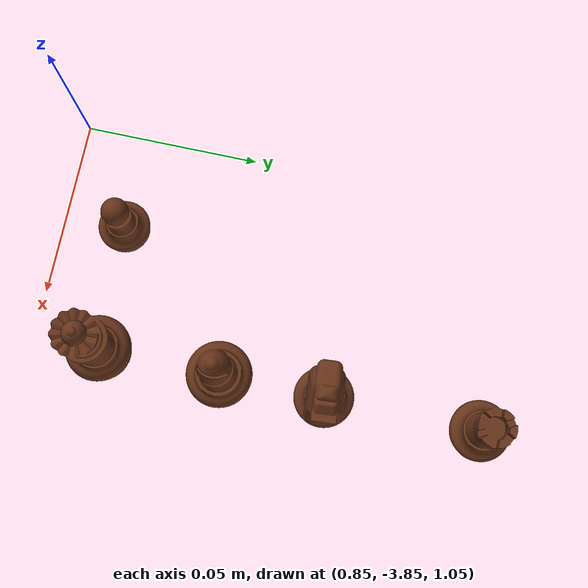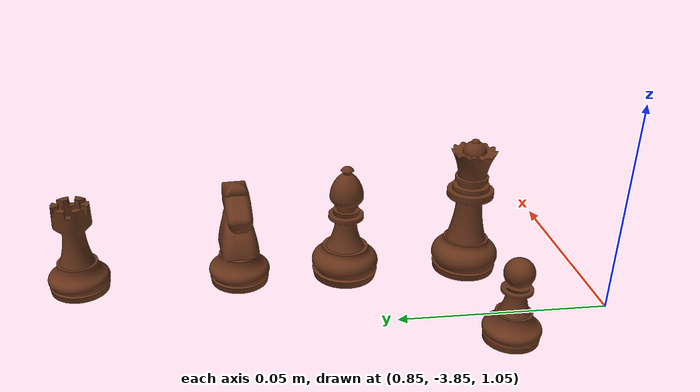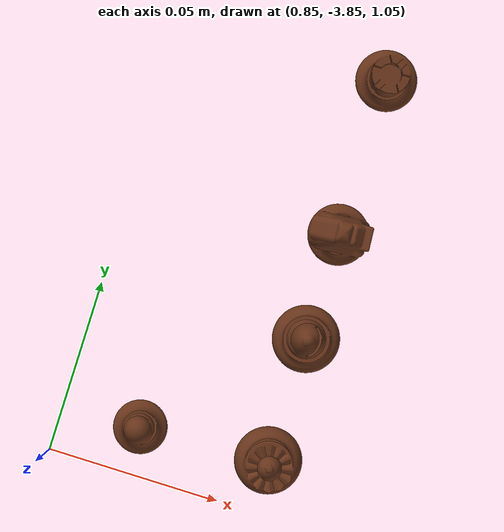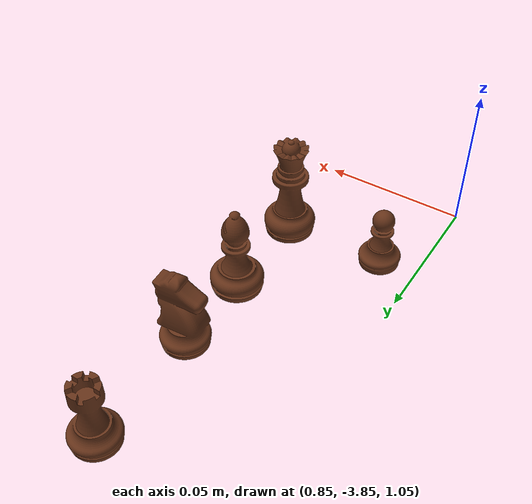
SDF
<sdf version="1.7">
 <world name="default">
  <model name="ground_plane">
   <static>1</static>
   <link name="link">
    <collision name="collision">
     <geometry><plane><normal>0 0 1</normal><size>100 100</size></plane></geometry>
     <surface>
      <contact><collide_bitmask>65535</collide_bitmask></contact>
      <friction><ode><mu>100</mu><mu2>50</mu2></ode></friction>
     </surface>
    </collision>
    <visual name="visual">
     <cast_shadows>0</cast_shadows>
     <geometry><plane><normal>0 0 1</normal><size>100 100</size></plane></geometry>
     <material>
      <script><uri>file://media/materials/scripts/gazebo.material</uri><name>Gazebo/Grey</name></script>
     </material>
    </visual>
   </link>
  </model>
  <model name="queen_black">
   <static>0</static>
   <link name="link_0">
    <inertial>
     <mass>0.01</mass>
     <inertia><ixx>1e-06</ixx><ixy>0</ixy><ixz>0</ixz><iyy>1e-06</iyy><iyz>0</iyz><izz>5e-07</izz></inertia>
    </inertial>
    <visual name="visual">
     <geometry><mesh><uri>model://queen_black/meshes/queen.dae</uri><scale>1 1 1</scale></mesh></geometry>
     <material>
      <lighting>1</lighting>
      <script><uri>file://media/materials/scripts/gazebo.material</uri><name>Gazebo/Grey</name></script>
      <shader type="vertex"><normal_map>__default__</normal_map></shader>
      <ambient>0.62 0.31 0.12 1</ambient>
      <diffuse>0.4 0.2 0.1 1</diffuse>
      <specular>0.01 0.01 0.01 1</specular>
      <emissive>0 0 0 1</emissive>
     </material>
    </visual>
    <collision name="collision">
     <pose>0 0 0.005 0 -0 0</pose>
     <geometry><box><size>0.02 0.02 0.01</size></box></geometry>
     <surface>
      <friction>
       <ode><mu>1</mu><mu2>1</mu2><fdir1>0 0 0</fdir1><slip1>0</slip1><slip2>0</slip2></ode>
       <torsional>
        <coefficient>1</coefficient>
        <patch_radius>0</patch_radius>
        <surface_radius>0</surface_radius>
        <use_patch_radius>1</use_patch_radius>
        <ode><slip>0</slip></ode>
       </torsional>
      </friction>
      <bounce><restitution_coefficient>0</restitution_coefficient><threshold>1e+06</threshold></bounce>
      <contact>
       <collide_without_contact>0</collide_without_contact>
       <collide_without_contact_bitmask>1</collide_without_contact_bitmask>
       <collide_bitmask>1</collide_bitmask>
       <ode>
        <soft_cfm>0</soft_cfm>
        <soft_erp>0.2</soft_erp>
        <kp>1e+13</kp>
        <kd>1</kd>
        <max_vel>0.01</max_vel>
        <min_depth>0</min_depth>
       </ode>
       <bullet>
        <split_impulse>1</split_impulse>
        <split_impulse_penetration_threshold>-0.01</split_impulse_penetration_threshold>
        <soft_cfm>0</soft_cfm>
        <soft_erp>0.2</soft_erp>
        <kp>1e+13</kp>
        <kd>1</kd>
       </bullet>
      </contact>
     </surface>
    </collision>
   </link>
   <static>0</static>
   <pose>0.911171 -3.83568 1.02612 0 0 0</pose>
  </model>
  <model name="bishop_black">
   <static>0</static>
   <link name="link_0">
    <inertial>
     <mass>0.01</mass>
     <inertia><ixx>1e-06</ixx><ixy>0</ixy><ixz>0</ixz><iyy>1e-06</iyy><iyz>0</iyz><izz>5e-07</izz></inertia>
    </inertial>
    <visual name="visual">
     <geometry><mesh><uri>model://bishop_black/meshes/bishop.dae</uri><scale>1 1 1</scale></mesh></geometry>
     <material>
      <lighting>1</lighting>
      <script><uri>file://media/materials/scripts/gazebo.material</uri><name>Gazebo/Grey</name></script>
      <shader type="vertex"><normal_map>__default__</normal_map></shader>
      <ambient>0.62 0.31 0.12 1</ambient>
      <diffuse>0.4 0.2 0.1 1</diffuse>
      <specular>0.01 0.01 0.01 1</specular>
      <emissive>0 0 0 1</emissive>
     </material>
    </visual>
    <collision name="collision">
     <pose>0 0 0.005 0 -0 0</pose>
     <geometry><box><size>0.02 0.02 0.01</size></box></geometry>
     <surface>
      <friction>
       <ode><mu>1</mu><mu2>1</mu2><fdir1>0 0 0</fdir1><slip1>0</slip1><slip2>0</slip2></ode>
       <torsional>
        <coefficient>1</coefficient>
        <patch_radius>0</patch_radius>
        <surface_radius>0</surface_radius>
        <use_patch_radius>1</use_patch_radius>
        <ode><slip>0</slip></ode>
       </torsional>
      </friction>
      <bounce><restitution_coefficient>0</restitution_coefficient><threshold>1e+06</threshold></bounce>
      <contact>
       <collide_without_contact>0</collide_without_contact>
       <collide_without_contact_bitmask>1</collide_without_contact_bitmask>
       <collide_bitmask>1</collide_bitmask>
       <ode>
        <soft_cfm>0</soft_cfm>
        <soft_erp>0.2</soft_erp>
        <kp>1e+13</kp>
        <kd>1</kd>
        <max_vel>0.01</max_vel>
        <min_depth>0</min_depth>
       </ode>
       <bullet>
        <split_impulse>1</split_impulse>
        <split_impulse_penetration_threshold>-0.01</split_impulse_penetration_threshold>
        <soft_cfm>0</soft_cfm>
        <soft_erp>0.2</soft_erp>
        <kp>1e+13</kp>
        <kd>1</kd>
       </bullet>
      </contact>
     </surface>
    </collision>
   </link>
   <static>0</static>
   <pose>0.911171 -3.79833 1.02612 0 0 0</pose>
  </model>
  <model name="knight_black">
   <static>0</static>
   <link name="link_0">
    <inertial>
     <mass>0.01</mass>
     <inertia><ixx>1e-06</ixx><ixy>0</ixy><ixz>0</ixz><iyy>1e-06</iyy><iyz>0</iyz><izz>5e-07</izz></inertia>
    </inertial>
    <visual name="visual">
     <geometry><mesh><uri>model://knight_black/meshes/knight.dae</uri><scale>1 1 1</scale></mesh></geometry>
     <material>
      <lighting>1</lighting>
      <script><uri>file://media/materials/scripts/gazebo.material</uri><name>Gazebo/Grey</name></script>
      <shader type="vertex"><normal_map>__default__</normal_map></shader>
      <ambient>0.62 0.31 0.12 1</ambient>
      <diffuse>0.4 0.2 0.1 1</diffuse>
      <specular>0.01 0.01 0.01 1</specular>
      <emissive>0 0 0 1</emissive>
     </material>
    </visual>
    <collision name="collision">
     <pose>0 0 0.005 0 -0 0</pose>
     <geometry><box><size>0.018 0.018 0.01</size></box></geometry>
     <surface>
      <friction>
       <ode><mu>1</mu><mu2>1</mu2><fdir1>0 0 0</fdir1><slip1>0</slip1><slip2>0</slip2></ode>
       <torsional>
        <coefficient>1</coefficient>
        <patch_radius>0</patch_radius>
        <surface_radius>0</surface_radius>
        <use_patch_radius>1</use_patch_radius>
        <ode><slip>0</slip></ode>
       </torsional>
      </friction>
      <bounce><restitution_coefficient>0</restitution_coefficient><threshold>1e+06</threshold></bounce>
      <contact>
       <collide_without_contact>0</collide_without_contact>
       <collide_without_contact_bitmask>1</collide_without_contact_bitmask>
       <collide_bitmask>1</collide_bitmask>
       <ode>
        <soft_cfm>0</soft_cfm>
        <soft_erp>0.2</soft_erp>
        <kp>1e+13</kp>
        <kd>1</kd>
        <max_vel>0.01</max_vel>
        <min_depth>0</min_depth>
       </ode>
       <bullet>
        <split_impulse>1</split_impulse>
        <split_impulse_penetration_threshold>-0.01</split_impulse_penetration_threshold>
        <soft_cfm>0</soft_cfm>
        <soft_erp>0.2</soft_erp>
        <kp>1e+13</kp>
        <kd>1</kd>
       </bullet>
      </contact>
     </surface>
    </collision>
   </link>
   <static>0</static>
   <pose>0.911078 -3.76634 1.02612 0 0 -1.49951</pose>
  </model>
  <model name="rook_black">
   <static>0</static>
   <link name="link_0">
    <inertial>
     <mass>0.01</mass>
     <inertia><ixx>1e-06</ixx><ixy>0</ixy><ixz>0</ixz><iyy>1e-06</iyy><iyz>0</iyz><izz>5e-07</izz></inertia>
    </inertial>
    <visual name="visual">
     <geometry><mesh><uri>model://rook_black/meshes/rook.dae</uri><scale>1 1 1</scale></mesh></geometry>
     <material>
      <lighting>1</lighting>
      <script><uri>file://media/materials/scripts/gazebo.material</uri><name>Gazebo/Grey</name></script>
      <shader type="vertex"><normal_map>__default__</normal_map></shader>
      <ambient>0.62 0.31 0.12 1</ambient>
      <diffuse>0.4 0.2 0.1 1</diffuse>
      <specular>0.01 0.01 0.01 1</specular>
      <emissive>0 0 0 1</emissive>
     </material>
    </visual>
    <collision name="collision">
     <pose>0 0 0.005 0 -0 0</pose>
     <geometry><box><size>0.018 0.018 0.01</size></box></geometry>
     <surface>
      <friction>
       <ode><mu>1</mu><mu2>1</mu2><fdir1>0 0 0</fdir1><slip1>0</slip1><slip2>0</slip2></ode>
       <torsional>
        <coefficient>1</coefficient>
        <patch_radius>0</patch_radius>
        <surface_radius>0</surface_radius>
        <use_patch_radius>1</use_patch_radius>
        <ode><slip>0</slip></ode>
       </torsional>
      </friction>
      <bounce><restitution_coefficient>0</restitution_coefficient><threshold>1e+06</threshold></bounce>
      <contact>
       <collide_without_contact>0</collide_without_contact>
       <collide_without_contact_bitmask>1</collide_without_contact_bitmask>
       <collide_bitmask>1</collide_bitmask>
       <ode>
        <soft_cfm>0</soft_cfm>
        <soft_erp>0.2</soft_erp>
        <kp>1e+13</kp>
        <kd>1</kd>
        <max_vel>0.01</max_vel>
        <min_depth>0</min_depth>
       </ode>
       <bullet>
        <split_impulse>1</split_impulse>
        <split_impulse_penetration_threshold>-0.01</split_impulse_penetration_threshold>
        <soft_cfm>0</soft_cfm>
        <soft_erp>0.2</soft_erp>
        <kp>1e+13</kp>
        <kd>1</kd>
       </bullet>
      </contact>
     </surface>
    </collision>
   </link>
   <static>0</static>
   <pose>0.911071 -3.71873 1.02612 0 0 0</pose>
  </model>
  <model name="pawn_black_clone_1">
   <static>0</static>
   <link name="link_0">
    <inertial>
     <mass>0.01</mass>
     <inertia><ixx>1e-06</ixx><ixy>0</ixy><ixz>0</ixz><iyy>1e-06</iyy><iyz>0</iyz><izz>5e-07</izz></inertia>
    </inertial>
    <visual name="visual">
     <geometry><mesh><uri>model://pawn_black/meshes/pawn.dae</uri><scale>1 1 1</scale></mesh></geometry>
     <material>
      <lighting>1</lighting>
      <script><uri>file://media/materials/scripts/gazebo.material</uri><name>Gazebo/Grey</name></script>
      <shader type="vertex"><normal_map>__default__</normal_map></shader>
      <ambient>0.62 0.31 0.12 1</ambient>
      <diffuse>0.4 0.2 0.1 1</diffuse>
      <specular>0.01 0.01 0.01 1</specular>
      <emissive>0 0 0 1</emissive>
     </material>
    </visual>
    <collision name="collision">
     <pose>0 0 0.005 0 -0 0</pose>
     <geometry><box><size>0.016 0.016 0.01</size></box></geometry>
     <surface>
      <friction>
       <ode><mu>1</mu><mu2>1</mu2><fdir1>0 0 0</fdir1><slip1>0</slip1><slip2>0</slip2></ode>
       <torsional>
        <coefficient>1</coefficient>
        <patch_radius>0</patch_radius>
        <surface_radius>0</surface_radius>
        <use_patch_radius>1</use_patch_radius>
        <ode><slip>0</slip></ode>
       </torsional>
      </friction>
      <bounce><restitution_coefficient>0</restitution_coefficient><threshold>1e+06</threshold></bounce>
      <contact>
       <collide_without_contact>0</collide_without_contact>
       <collide_without_contact_bitmask>1</collide_without_contact_bitmask>
       <collide_bitmask>1</collide_bitmask>
       <ode>
        <soft_cfm>0</soft_cfm>
        <soft_erp>0.2</soft_erp>
        <kp>1e+13</kp>
        <kd>1</kd>
        <max_vel>0.01</max_vel>
        <min_depth>0</min_depth>
       </ode>
       <bullet>
        <split_impulse>1</split_impulse>
        <split_impulse_penetration_threshold>-0.01</split_impulse_penetration_threshold>
        <soft_cfm>0</soft_cfm>
        <soft_erp>0.2</soft_erp>
        <kp>1e+13</kp>
        <kd>1</kd>
       </bullet>
      </contact>
     </surface>
    </collision>
   </link>
   <static>0</static>
   <pose>0.872379 -3.83755 1.02612 0 0 -0</pose>
  </model>
 </world>
</sdf>
